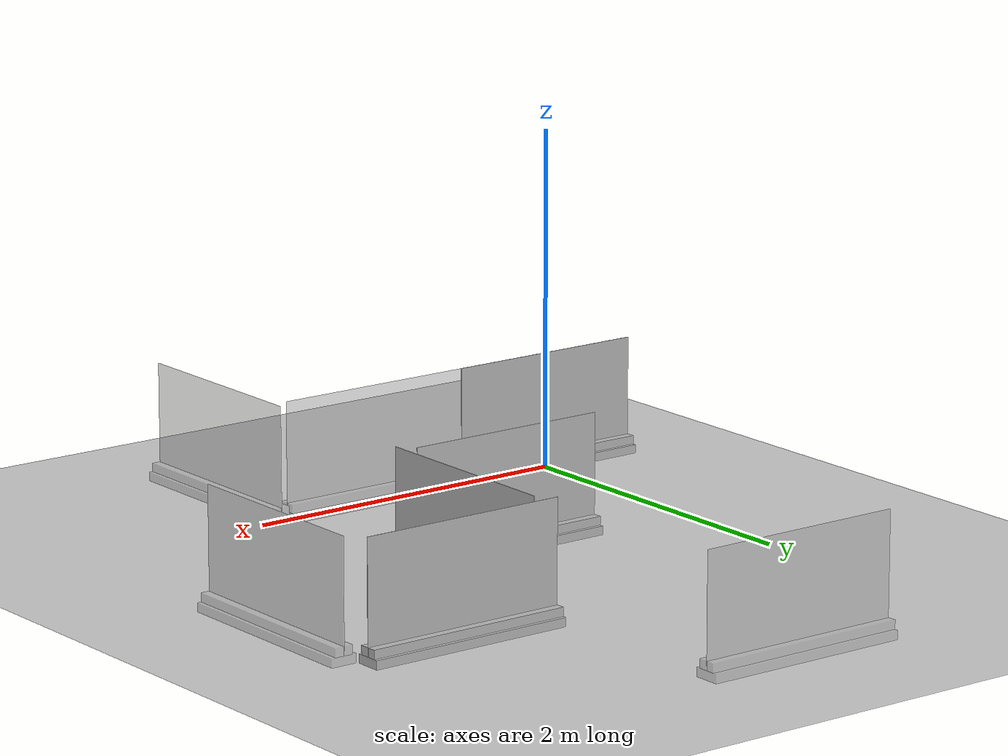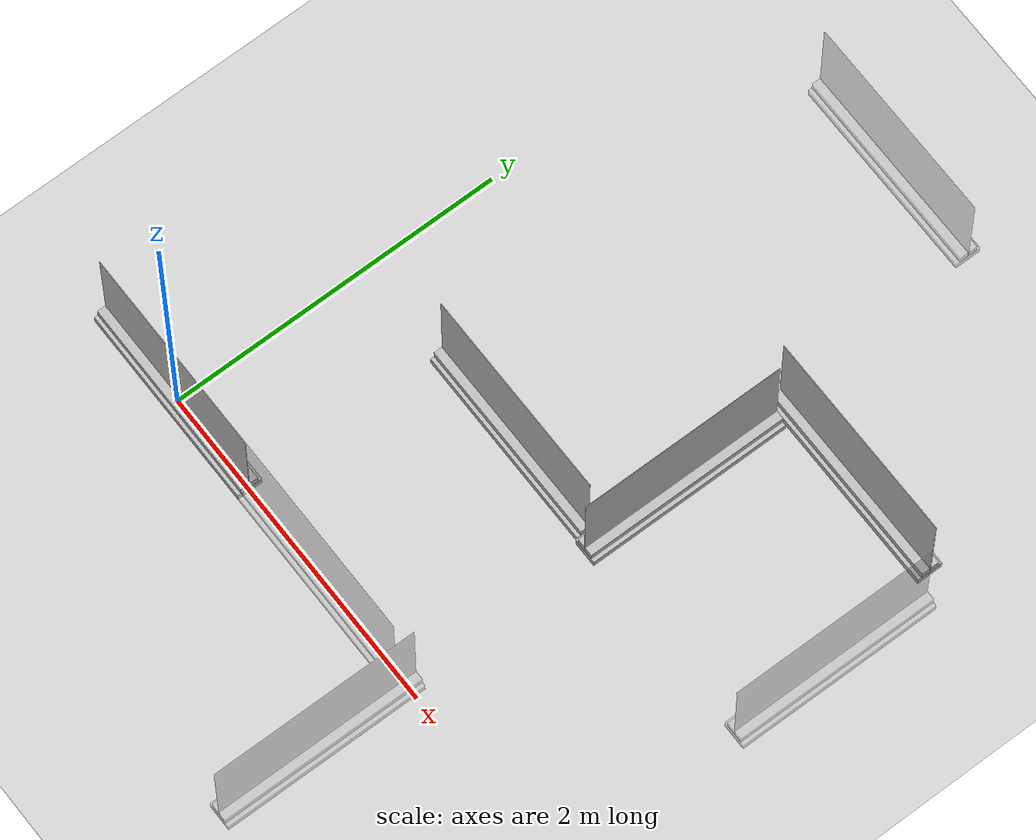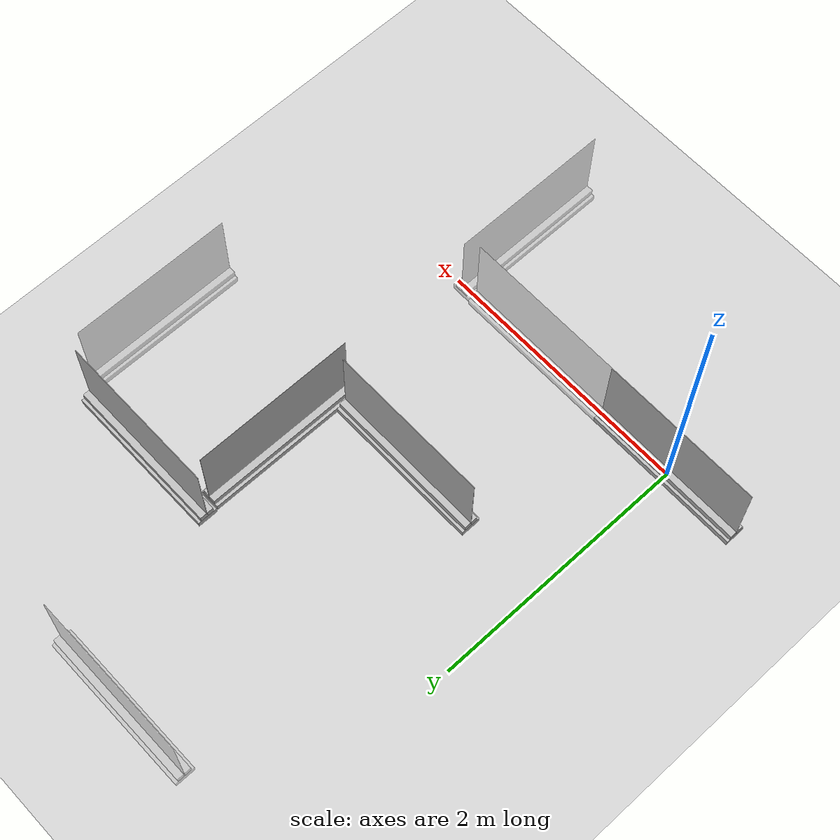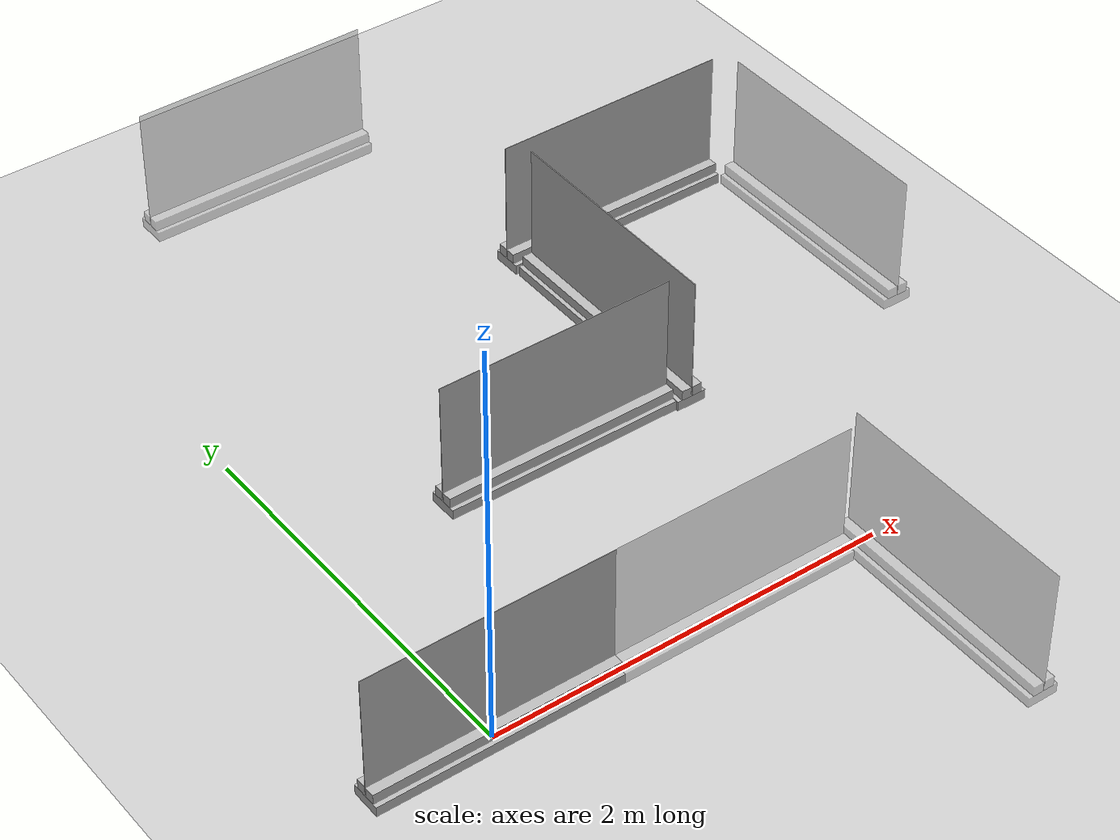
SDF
<?xml version="1.0" ?>
<sdf version="1.5">
  <world name="default">
  <scene>
  <sky>
    <clouds>
      <speed>12</speed>
    </clouds>
  </sky>
</scene>

    <plugin name="gazebo_ros_api_plugin" filename="libgazebo_ros_api_plugin.so" />

    <gui>
      <camera name="user_view">
        <pose>0 0 10 0 1.570795 0</pose>
      </camera>
    </gui>

    <!-- A global light source -->
    <include>
      <uri>model://sun</uri>
    </include>
    <!-- A ground plane -->
    <include>
      <uri>model://ground_plane</uri>
    </include>

    <include>
      <name>Wall 1</name>
      <uri>model://fleming_wall</uri>
      <pose>0 0 0 0 0 0</pose>
    </include>

    <include>
      <name>Wall 2</name>
      <uri>model://fleming_wall</uri>
      <pose>1.2192 1.2192 0 0 0 0</pose>
    </include>

    <include>
      <name>Wall 3</name>
      <uri>model://fleming_wall</uri>
      <pose>1.910 1.740 0 0 0 1.56575</pose>
    </include>

    <include>
      <name>Wall 4</name>
      <uri>model://fleming_wall</uri>
      <pose>2.4384 2.4384 0 0 0 0</pose>
    </include>

    <include>
      <name>Wall 5</name>
      <uri>model://fleming_wall</uri>
      <pose>0 0 0 0 0 0</pose>
    </include>

    <include>
      <name>Wall 6</name>
      <uri>model://fleming_wall</uri>
      <pose>1.2192 1.2192 0 0 0 0</pose>
    </include>

    <include>
      <name>Wall 7</name>
      <uri>model://fleming_wall</uri>
      <pose>1.910 1.740 0 0 0 1.56575</pose>
    </include>

    <include>
      <name>Wall 8</name>
      <uri>model://fleming_wall</uri>
      <pose>2.4384 2.4384 0 0 0 0</pose>
    </include>

    <include>
      <name>Ghost Wall 1</name>
      <uri>model://fleming_wall_ghost</uri>
      <pose>0 0 0 0 0 0</pose>
    </include>

    <include>
      <name>Ghost Wall 2</name>
      <uri>model://fleming_wall_ghost</uri>
      <pose>1.2192 1.2192 0 0 0 0</pose>
    </include>

    <include>
      <name>Ghost Wall 3</name>
      <uri>model://fleming_wall_ghost</uri>
      <pose>1.910 1.740 0 0 0 1.56575</pose>
    </include>

    <include>
      <name>Ghost Wall 4</name>
      <uri>model://fleming_wall_ghost</uri>
      <pose>2.4384 2.4384 0 0 0 0</pose>
    </include>

    <include>
      <name>Ghost Wall 5</name>
      <uri>model://fleming_wall_ghost</uri>
      <pose>1.2192 3.6576 0 0 0 0</pose>
    </include>

    <include>
      <name>Ghost Wall 6</name>
      <uri>model://fleming_wall_ghost</uri>
      <pose>3.1292 1.740 0 0 0 1.56575</pose>
    </include>

    <include>
      <name>Ghost Wall 7</name>
      <uri>model://fleming_wall_ghost</uri>
      <pose>1.2192 0 0 0 0 0</pose>
    </include>

    <include>
      <name>Ghost Wall 8</name>
      <uri>model://fleming_wall_ghost</uri>
      <pose>1.910 -0.546 0 0 0 1.56575</pose>
    </include>

  </world>
</sdf>

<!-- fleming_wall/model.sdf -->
<sdf version='1.4'>
  <model name="fleming_wall">
  	<static>true</static>

  	<link name='wall'>
            <pose>0 0 0.0254 0 0 0</pose>

            <visual name='base_visual'>
              <geometry>
                <box>
                  <size>1.2192 0.1524 0.0508</size>
                </box>
              </geometry>
              <material>
                <script>
                  <uri>model://fleming_wall/materials/scripts</uri>
                  <uri>model://fleming_wall/materials/textures</uri>
                  <name>FlemingWall/Image</name>
                </script>
              </material>
            </visual>

            <visual name='front_strut_visual'>
              <pose>0 0.028575 0.0508 0 0 0</pose>
              <geometry>
                <box>
                  <size>1.2192 0.0508 0.0508</size>
                </box>
              </geometry>
              <material>
                <script>
                  <uri>model://fleming_wall/materials/scripts</uri>
                  <uri>model://fleming_wall/materials/textures</uri>
                  <name>FlemingWall/Image</name>
                </script>
              </material>
            </visual>

            <visual name='back_strut_visual'>
              <pose>0 -0.028575 0.0508 0 0 0</pose>
              <geometry>
                <box>
                  <size>1.2192 0.0508 0.0508</size>
                </box>
              </geometry>
              <material>
                <script>
                  <uri>model://fleming_wall/materials/scripts</uri>
                  <uri>model://fleming_wall/materials/textures</uri>
                  <name>FlemingWall/Image</name>
                </script>
              </material>
            </visual>

            <visual name='panel_visual'>
              <pose>0 0 0.3556 0 0 0</pose>
              <geometry>
                <box>
                  <size>1.2192 0.003175 0.6096 </size>
                </box>
              </geometry>
              <material>
                <script>
                  <uri>model://fleming_wall/materials/scripts</uri>
                  <uri>model://fleming_wall/materials/textures</uri>
                  <name>FlemingWall/Image</name>
                </script>
              </material>
            </visual>
  </link>

  <!-- Make sure to grab the shared object from
  https://github.com/kdhansen/aau_gazebo_vicon -->
     <plugin name="ros_transform" filename="/usr/lib/libros_transform.so">
      <targetLink>wall</targetLink>
      <transformTopic>/vicon/small_wall/small_wall</transformTopic>
    </plugin>

  </model>
</sdf>

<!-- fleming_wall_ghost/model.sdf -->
<sdf version='1.4'>
  <model name="fleming_wall_ghost_ghost">
  	<static>true</static>

  	<link name='wall'>
            <pose>0 0 0.0254 0 0 0</pose>

            <collision name='base_collision'>
              <geometry>
                <box>
                  <size>1.2192 0.1524 0.0508</size>
                </box>
              </geometry>
            </collision>

            <visual name='base_visual'>
              <transparency>0.5</transparency>
              <geometry>
                <box>
                  <size>1.2192 0.1524 0.0508</size>
                </box>
              </geometry>
              <material>
                <script>
                  <uri>model://fleming_wall_ghost/materials/scripts</uri>
                  <uri>model://fleming_wall_ghost/materials/textures</uri>
                  <name>FlemingWall/Image</name>
                </script>
              </material>
            </visual>

            <visual name='front_strut_visual'>
              <transparency>0.5</transparency>
              <pose>0 0.028575 0.0508 0 0 0</pose>
              <geometry>
                <box>
                  <size>1.2192 0.0508 0.0508</size>
                </box>
              </geometry>
              <material>
                <script>
                  <uri>model://fleming_wall_ghost/materials/scripts</uri>
                  <uri>model://fleming_wall_ghost/materials/textures</uri>
                  <name>FlemingWall/Image</name>
                </script>
              </material>
            </visual>

            <visual name='back_strut_visual'>
              <transparency>0.5</transparency>
              <pose>0 -0.028575 0.0508 0 0 0</pose>
              <geometry>
                <box>
                  <size>1.2192 0.0508 0.0508</size>
                </box>
              </geometry>
              <material>
                <script>
                  <uri>model://fleming_wall_ghost/materials/scripts</uri>
                  <uri>model://fleming_wall_ghost/materials/textures</uri>
                  <name>FlemingWall/Image</name>
                </script>
              </material>
            </visual>

            <visual name='panel_visual'>
              <transparency>0.5</transparency>
              <pose>0 0 0.3556 0 0 0</pose>
              <geometry>
                <box>
                  <size>1.2192 0.003175 0.6096 </size>
                </box>
              </geometry>
              <material>
                <script>
                  <uri>model://fleming_wall_ghost/materials/scripts</uri>
                  <uri>model://fleming_wall_ghost/materials/textures</uri>
                  <name>FlemingWall/Image</name>
                </script>
              </material>
            </visual>
  </link>

  </model>
</sdf>
